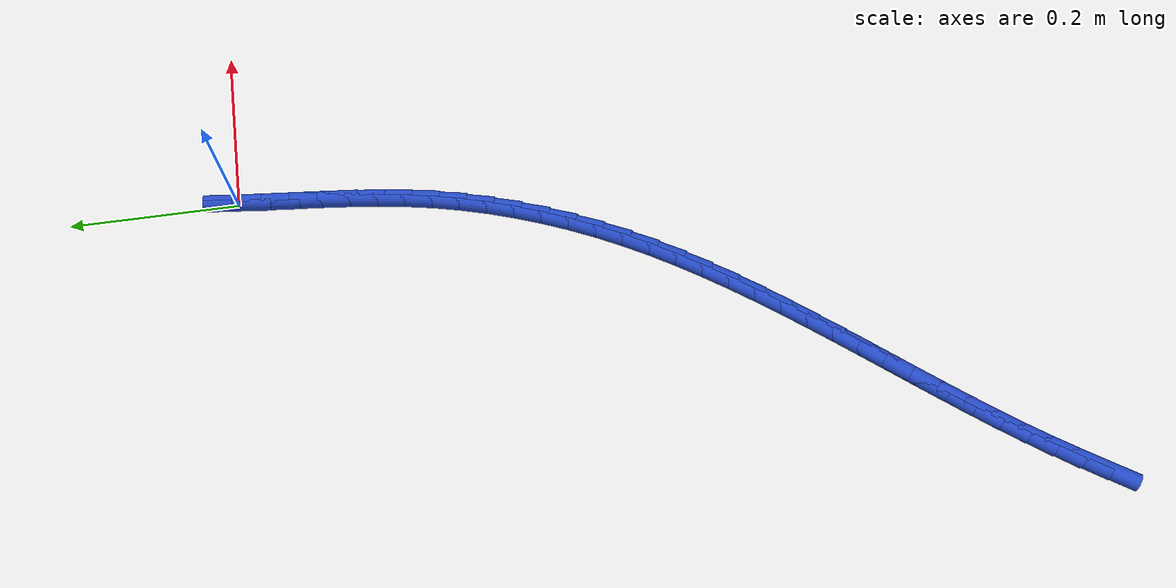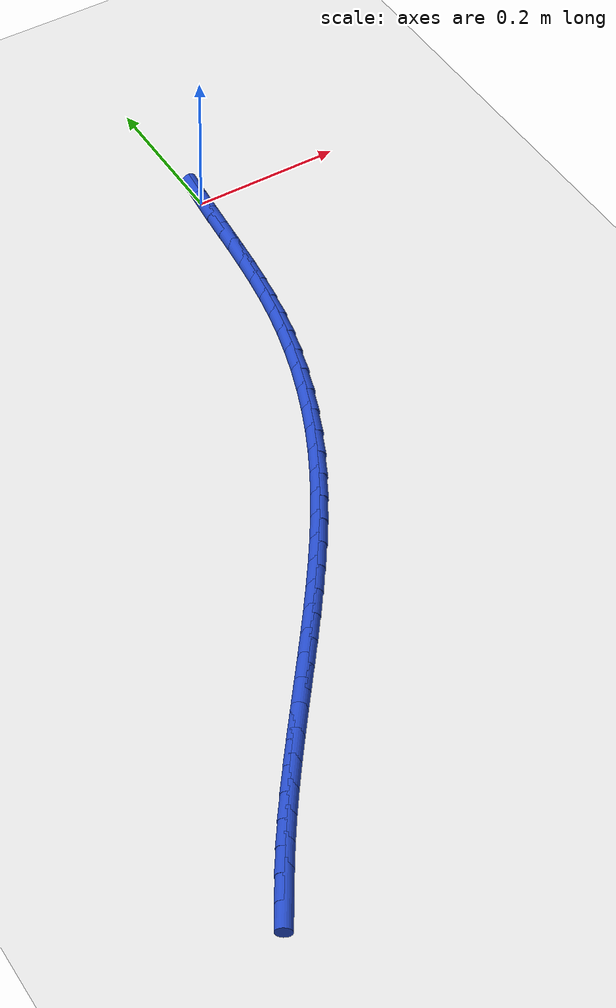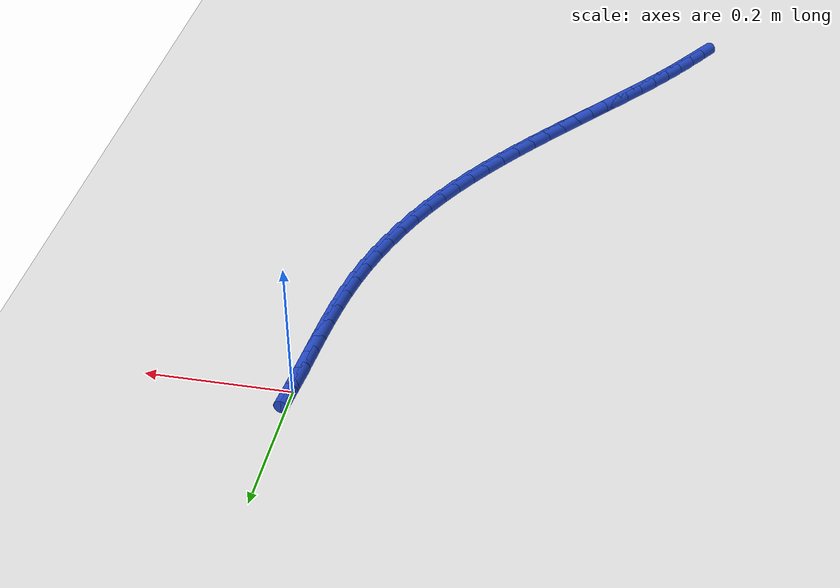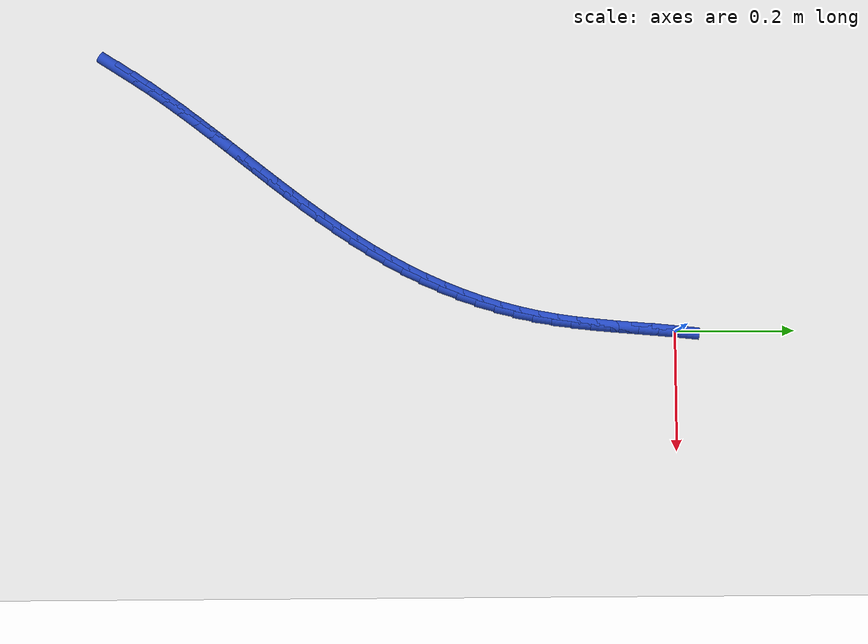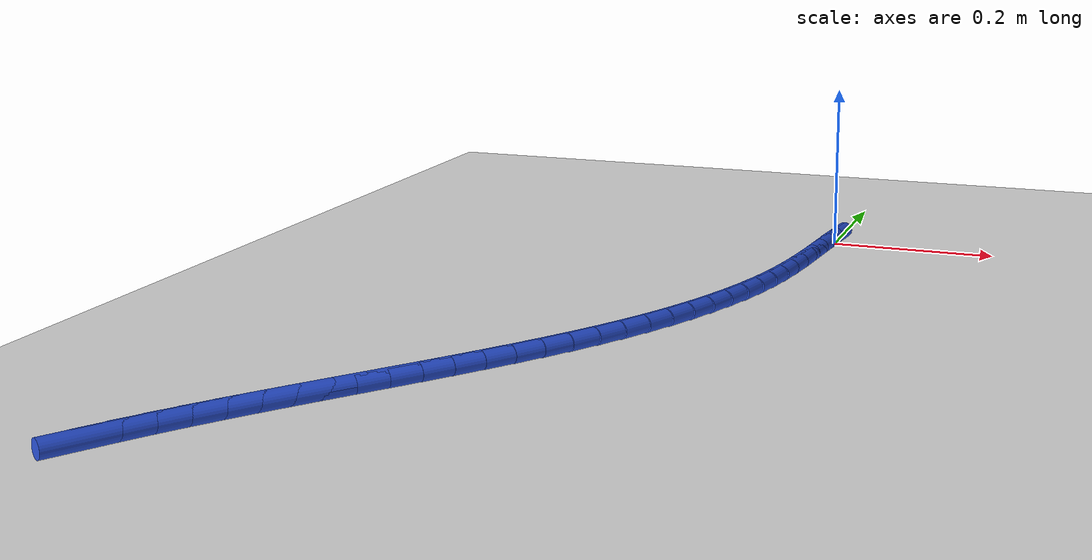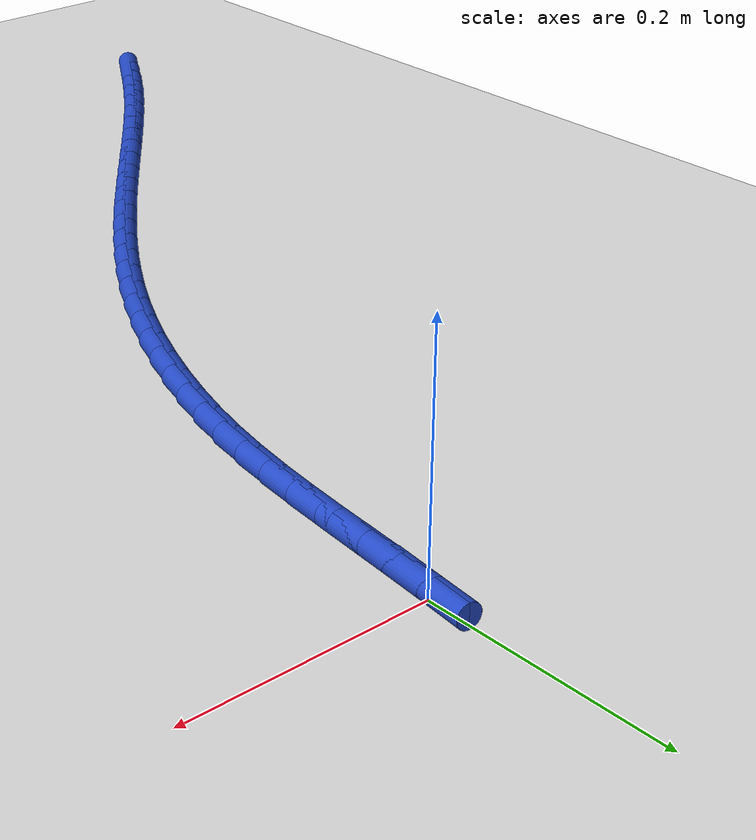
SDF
<sdf version="1.6">
 <world name="default">
  <model name="ground_plane">
   <static>1</static>
   <link name="link">
    <collision name="collision">
     <geometry><plane><normal>0 0 1</normal><size>100 100</size></plane></geometry>
     <surface><friction><ode><mu>100</mu><mu2>50</mu2></ode></friction></surface>
    </collision>
    <visual name="visual">
     <cast_shadows>0</cast_shadows>
     <geometry><plane><normal>0 0 1</normal><size>100 100</size></plane></geometry>
     <material>
      <script><uri>file://media/materials/scripts/gazebo.material</uri><name>Gazebo/WhiteGlow</name></script>
     </material>
    </visual>
   </link>
  </model>
  <model name="line">
   <link name="link_0">
    <pose>-5.2909066017292616e-17 -6.938893903907228e-17 0.01 0 1.57 1.4719108549677495</pose>
    <collision name="collision">
     <geometry><cylinder><radius>0.01</radius><length>0.08</length></cylinder></geometry>
    </collision>
    <visual name="visual">
     <material>
      <script><name>Gazebo/Blue</name><uri>file://media/materials/scripts/gazebo.material</uri></script>
     </material>
     <geometry><cylinder><radius>0.01</radius><length>0.08</length></cylinder></geometry>
    </visual>
   </link>
   <link name="link_238">
    <pose>-0.4505732284447733 -0.9328432048440135 0.01 0 1.57 1.0001764402918916</pose>
    <collision name="collision">
     <geometry><cylinder><radius>0.01</radius><length>0.08</length></cylinder></geometry>
    </collision>
    <visual name="visual">
     <material>
      <script><name>Gazebo/Blue</name><uri>file://media/materials/scripts/gazebo.material</uri></script>
     </material>
     <geometry><cylinder><radius>0.01</radius><length>0.08</length></cylinder></geometry>
    </visual>
   </link>
   <link name="link_239">
    <pose>-0.433772497186452 -0.9066674590570161 0.01 0 1.57 0.9844523544876632</pose>
    <collision name="collision">
     <geometry><cylinder><radius>0.01</radius><length>0.08</length></cylinder></geometry>
    </collision>
    <visual name="visual">
     <material>
      <script><name>Gazebo/Blue</name><uri>file://media/materials/scripts/gazebo.material</uri></script>
     </material>
     <geometry><cylinder><radius>0.01</radius><length>0.08</length></cylinder></geometry>
    </visual>
   </link>
   <link name="link_240">
    <pose>-0.4164204903059226 -0.88054567846753 0.01 0 1.57 0.9599247755791104</pose>
    <collision name="collision">
     <geometry><cylinder><radius>0.01</radius><length>0.08</length></cylinder></geometry>
    </collision>
    <visual name="visual">
     <material>
      <script><name>Gazebo/Blue</name><uri>file://media/materials/scripts/gazebo.material</uri></script>
     </material>
     <geometry><cylinder><radius>0.01</radius><length>0.08</length></cylinder></geometry>
    </visual>
   </link>
   <link name="link_241">
    <pose>-0.3982071655433427 -0.8545347045057053 0.01 0 1.57 0.9399020429820946</pose>
    <collision name="collision">
     <geometry><cylinder><radius>0.01</radius><length>0.08</length></cylinder></geometry>
    </collision>
    <visual name="visual">
     <material>
      <script><name>Gazebo/Blue</name><uri>file://media/materials/scripts/gazebo.material</uri></script>
     </material>
     <geometry><cylinder><radius>0.01</radius><length>0.08</length></cylinder></geometry>
    </visual>
   </link>
   <link name="link_242">
    <pose>-0.3792562525700924 -0.8285917970112744 0.01 0 1.57 0.9241986897819827</pose>
    <collision name="collision">
     <geometry><cylinder><radius>0.01</radius><length>0.08</length></cylinder></geometry>
    </collision>
    <visual name="visual">
     <material>
      <script><name>Gazebo/Blue</name><uri>file://media/materials/scripts/gazebo.material</uri></script>
     </material>
     <geometry><cylinder><radius>0.01</radius><length>0.08</length></cylinder></geometry>
    </visual>
   </link>
   <link name="link_243">
    <pose>-0.35969224440429765 -0.8026740405814599 0.01 0 1.57 0.9126295195875007</pose>
    <collision name="collision">
     <geometry><cylinder><radius>0.01</radius><length>0.08</length></cylinder></geometry>
    </collision>
    <visual name="visual">
     <material>
      <script><name>Gazebo/Blue</name><uri>file://media/materials/scripts/gazebo.material</uri></script>
     </material>
     <geometry><cylinder><radius>0.01</radius><length>0.08</length></cylinder></geometry>
    </visual>
   </link>
   <link name="link_244">
    <pose>-0.3396396340640826 -0.7767385198134816 0.01 0 1.57 0.9050380089830851</pose>
    <collision name="collision">
     <geometry><cylinder><radius>0.01</radius><length>0.08</length></cylinder></geometry>
    </collision>
    <visual name="visual">
     <material>
      <script><name>Gazebo/Blue</name><uri>file://media/materials/scripts/gazebo.material</uri></script>
     </material>
     <geometry><cylinder><radius>0.01</radius><length>0.08</length></cylinder></geometry>
    </visual>
   </link>
   <link name="link_245">
    <pose>-0.3192229145675734 -0.7507423193045627 0.01 0 1.57 0.9012987758074977</pose>
    <collision name="collision">
     <geometry><cylinder><radius>0.01</radius><length>0.08</length></cylinder></geometry>
    </collision>
    <visual name="visual">
     <material>
      <script><name>Gazebo/Blue</name><uri>file://media/materials/scripts/gazebo.material</uri></script>
     </material>
     <geometry><cylinder><radius>0.01</radius><length>0.08</length></cylinder></geometry>
    </visual>
   </link>
   <link name="link_246">
    <pose>-0.29856657893289434 -0.7246425236519233 0.01 0 1.57 0.9013182367154601</pose>
    <collision name="collision">
     <geometry><cylinder><radius>0.01</radius><length>0.08</length></cylinder></geometry>
    </collision>
    <visual name="visual">
     <material>
      <script><name>Gazebo/Blue</name><uri>file://media/materials/scripts/gazebo.material</uri></script>
     </material>
     <geometry><cylinder><radius>0.01</radius><length>0.08</length></cylinder></geometry>
    </visual>
   </link>
   <link name="link_247">
    <pose>-0.2777951201781699 -0.6983962174527837 0.01 0 1.57 0.9050339617759674</pose>
    <collision name="collision">
     <geometry><cylinder><radius>0.01</radius><length>0.08</length></cylinder></geometry>
    </collision>
    <visual name="visual">
     <material>
      <script><name>Gazebo/Blue</name><uri>file://media/materials/scripts/gazebo.material</uri></script>
     </material>
     <geometry><cylinder><radius>0.01</radius><length>0.08</length></cylinder></geometry>
    </visual>
   </link>
   <link name="link_248">
    <pose>-0.25703303132152644 -0.6719604853043677 0.01 0 1.57 0.9124130210629497</pose>
    <collision name="collision">
     <geometry><cylinder><radius>0.01</radius><length>0.08</length></cylinder></geometry>
    </collision>
    <visual name="visual">
     <material>
      <script><name>Gazebo/Blue</name><uri>file://media/materials/scripts/gazebo.material</uri></script>
     </material>
     <geometry><cylinder><radius>0.01</radius><length>0.08</length></cylinder></geometry>
    </visual>
   </link>
   <link name="link_249">
    <pose>-0.23640480538108766 -0.6452924118038946 0.01 0 1.57 0.923449441210996</pose>
    <collision name="collision">
     <geometry><cylinder><radius>0.01</radius><length>0.08</length></cylinder></geometry>
    </collision>
    <visual name="visual">
     <material>
      <script><name>Gazebo/Blue</name><uri>file://media/materials/scripts/gazebo.material</uri></script>
     </material>
     <geometry><cylinder><radius>0.01</radius><length>0.08</length></cylinder></geometry>
    </visual>
   </link>
   <link name="link_250">
    <pose>-0.21603493537497992 -0.618349081548587 0.01 0 1.57 0.9381607440643199</pose>
    <collision name="collision">
     <geometry><cylinder><radius>0.01</radius><length>0.08</length></cylinder></geometry>
    </collision>
    <visual name="visual">
     <material>
      <script><name>Gazebo/Blue</name><uri>file://media/materials/scripts/gazebo.material</uri></script>
     </material>
     <geometry><cylinder><radius>0.01</radius><length>0.08</length></cylinder></geometry>
    </visual>
   </link>
   <link name="link_251">
    <pose>-0.196047914321327 -0.5910875791356652 0.01 0 1.57 0.9565834206056822</pose>
    <collision name="collision">
     <geometry><cylinder><radius>0.01</radius><length>0.08</length></cylinder></geometry>
    </collision>
    <visual name="visual">
     <material>
      <script><name>Gazebo/Blue</name><uri>file://media/materials/scripts/gazebo.material</uri></script>
     </material>
     <geometry><cylinder><radius>0.01</radius><length>0.08</length></cylinder></geometry>
    </visual>
   </link>
   <link name="link_252">
    <pose>-0.17656823523825513 -0.563464989162352 0.01 0 1.57 0.9787671013660283</pose>
    <collision name="collision">
     <geometry><cylinder><radius>0.01</radius><length>0.08</length></cylinder></geometry>
    </collision>
    <visual name="visual">
     <material>
      <script><name>Gazebo/Blue</name><uri>file://media/materials/scripts/gazebo.material</uri></script>
     </material>
     <geometry><cylinder><radius>0.01</radius><length>0.08</length></cylinder></geometry>
    </visual>
   </link>
   <link name="link_253">
    <pose>-0.15772039114388825 -0.535438396225867 0.01 0 1.57 1.0047671266364127</pose>
    <collision name="collision">
     <geometry><cylinder><radius>0.01</radius><length>0.08</length></cylinder></geometry>
    </collision>
    <visual name="visual">
     <material>
      <script><name>Gazebo/Blue</name><uri>file://media/materials/scripts/gazebo.material</uri></script>
     </material>
     <geometry><cylinder><radius>0.01</radius><length>0.08</length></cylinder></geometry>
    </visual>
   </link>
   <link name="link_254">
    <pose>-0.13962887505635244 -0.5069648849234332 0.01 0 1.57 1.034635212419244</pose>
    <collision name="collision">
     <geometry><cylinder><radius>0.01</radius><length>0.08</length></cylinder></geometry>
    </collision>
    <visual name="visual">
     <material>
      <script><name>Gazebo/Blue</name><uri>file://media/materials/scripts/gazebo.material</uri></script>
     </material>
     <geometry><cylinder><radius>0.01</radius><length>0.08</length></cylinder></geometry>
    </visual>
   </link>
   <link name="link_255">
    <pose>-0.12241817999377165 -0.47800153985227023 0.01 0 1.57 1.0684079771030641</pose>
    <collision name="collision">
     <geometry><cylinder><radius>0.01</radius><length>0.08</length></cylinder></geometry>
    </collision>
    <visual name="visual">
     <material>
      <script><name>Gazebo/Blue</name><uri>file://media/materials/scripts/gazebo.material</uri></script>
     </material>
     <geometry><cylinder><radius>0.01</radius><length>0.08</length></cylinder></geometry>
    </visual>
   </link>
   <link name="link_256">
    <pose>-0.10621279896184267 -0.44850544562896866 0.01 0 1.57 1.1054620068189691</pose>
    <collision name="collision">
     <geometry><cylinder><radius>0.01</radius><length>0.08</length></cylinder></geometry>
    </collision>
    <visual name="visual">
     <material>
      <script><name>Gazebo/Blue</name><uri>file://media/materials/scripts/gazebo.material</uri></script>
     </material>
     <geometry><cylinder><radius>0.01</radius><length>0.08</length></cylinder></geometry>
    </visual>
   </link>
   <link name="link_257">
    <pose>-0.09112389339244022 -0.4184544598879878 0.01 0 1.57 1.1434126743536488</pose>
    <collision name="collision">
     <geometry><cylinder><radius>0.01</radius><length>0.08</length></cylinder></geometry>
    </collision>
    <visual name="visual">
     <material>
      <script><name>Gazebo/Blue</name><uri>file://media/materials/scripts/gazebo.material</uri></script>
     </material>
     <geometry><cylinder><radius>0.01</radius><length>0.08</length></cylinder></geometry>
    </visual>
   </link>
   <link name="link_258">
    <pose>-0.07721085338559341 -0.3879071094192975 0.01 0 1.57 1.1818525462947118</pose>
    <collision name="collision">
     <geometry><cylinder><radius>0.01</radius><length>0.08</length></cylinder></geometry>
    </collision>
    <visual name="visual">
     <material>
      <script><name>Gazebo/Blue</name><uri>file://media/materials/scripts/gazebo.material</uri></script>
     </material>
     <geometry><cylinder><radius>0.01</radius><length>0.08</length></cylinder></geometry>
    </visual>
   </link>
   <link name="link_259">
    <pose>-0.06452050367864613 -0.35694150013437254 0.01 0 1.57 1.2209840826684342</pose>
    <collision name="collision">
     <geometry><cylinder><radius>0.01</radius><length>0.08</length></cylinder></geometry>
    </collision>
    <visual name="visual">
     <material>
      <script><name>Gazebo/Blue</name><uri>file://media/materials/scripts/gazebo.material</uri></script>
     </material>
     <geometry><cylinder><radius>0.01</radius><length>0.08</length></cylinder></geometry>
    </visual>
   </link>
   <link name="link_260">
    <pose>-0.05309966900894065 -0.3256357379446845 0.01 0 1.57 1.261013041553228</pose>
    <collision name="collision">
     <geometry><cylinder><radius>0.01</radius><length>0.08</length></cylinder></geometry>
    </collision>
    <visual name="visual">
     <material>
      <script><name>Gazebo/Blue</name><uri>file://media/materials/scripts/gazebo.material</uri></script>
     </material>
     <geometry><cylinder><radius>0.01</radius><length>0.08</length></cylinder></geometry>
    </visual>
   </link>
   <link name="link_261">
    <pose>-0.042995174113820714 -0.29406792876170845 0.01 0 1.57 1.3021490768912583</pose>
    <collision name="collision">
     <geometry><cylinder><radius>0.01</radius><length>0.08</length></cylinder></geometry>
    </collision>
    <visual name="visual">
     <material>
      <script><name>Gazebo/Blue</name><uri>file://media/materials/scripts/gazebo.material</uri></script>
     </material>
     <geometry><cylinder><radius>0.01</radius><length>0.08</length></cylinder></geometry>
    </visual>
   </link>
   <link name="link_262">
    <pose>-0.03425384373062873 -0.2623161784969159 0.01 0 1.57 1.3446058151800606</pose>
    <collision name="collision">
     <geometry><cylinder><radius>0.01</radius><length>0.08</length></cylinder></geometry>
    </collision>
    <visual name="visual">
     <material>
      <script><name>Gazebo/Blue</name><uri>file://media/materials/scripts/gazebo.material</uri></script>
     </material>
     <geometry><cylinder><radius>0.01</radius><length>0.08</length></cylinder></geometry>
    </visual>
   </link>
   <link name="link_263">
    <pose>-0.026922502590068176 -0.2304585930579225 0.01 0 1.57 1.3870815043847637</pose>
    <collision name="collision">
     <geometry><cylinder><radius>0.01</radius><length>0.08</length></cylinder></geometry>
    </collision>
    <visual name="visual">
     <material>
      <script><name>Gazebo/Blue</name><uri>file://media/materials/scripts/gazebo.material</uri></script>
     </material>
     <geometry><cylinder><radius>0.01</radius><length>0.08</length></cylinder></geometry>
    </visual>
   </link>
   <link name="link_264">
    <pose>-0.0209918292523332 -0.19854064367541305 0.01 0 1.57 1.4233893959877661</pose>
    <collision name="collision">
     <geometry><cylinder><radius>0.01</radius><length>0.08</length></cylinder></geometry>
    </collision>
    <visual name="visual">
     <material>
      <script><name>Gazebo/Blue</name><uri>file://media/materials/scripts/gazebo.material</uri></script>
     </material>
     <geometry><cylinder><radius>0.01</radius><length>0.08</length></cylinder></geometry>
    </visual>
   </link>
   <link name="link_265">
    <pose>-0.016231216486174423 -0.16647918033579712 0.01 0 1.57 1.4514500304086817</pose>
    <collision name="collision">
     <geometry><cylinder><radius>0.01</radius><length>0.08</length></cylinder></geometry>
    </collision>
    <visual name="visual">
     <material>
      <script><name>Gazebo/Blue</name><uri>file://media/materials/scripts/gazebo.material</uri></script>
     </material>
     <geometry><cylinder><radius>0.01</radius><length>0.08</length></cylinder></geometry>
    </visual>
   </link>
   <link name="link_266">
    <pose>-0.012355548256476667 -0.13415937005961254 0.01 0 1.57 1.470929594494098</pose>
    <collision name="collision">
     <geometry><cylinder><radius>0.01</radius><length>0.08</length></cylinder></geometry>
    </collision>
    <visual name="visual">
     <material>
      <script><name>Gazebo/Blue</name><uri>file://media/materials/scripts/gazebo.material</uri></script>
     </material>
     <geometry><cylinder><radius>0.01</radius><length>0.08</length></cylinder></geometry>
    </visual>
   </link>
   <link name="link_267">
    <pose>-0.009079708528125303 -0.10146637986740134 0.01 0 1.57 1.4817904661592998</pose>
    <collision name="collision">
     <geometry><cylinder><radius>0.01</radius><length>0.08</length></cylinder></geometry>
    </collision>
    <visual name="visual">
     <material>
      <script><name>Gazebo/Blue</name><uri>file://media/materials/scripts/gazebo.material</uri></script>
     </material>
     <geometry><cylinder><radius>0.01</radius><length>0.08</length></cylinder></geometry>
    </visual>
   </link>
   <link name="link_268">
    <pose>-0.006118581266005334 -0.06828537677970242 0.01 0 1.57 1.484239991365416</pose>
    <collision name="collision">
     <geometry><cylinder><radius>0.01</radius><length>0.08</length></cylinder></geometry>
    </collision>
    <visual name="visual">
     <material>
      <script><name>Gazebo/Blue</name><uri>file://media/materials/scripts/gazebo.material</uri></script>
     </material>
     <geometry><cylinder><radius>0.01</radius><length>0.08</length></cylinder></geometry>
    </visual>
   </link>
   <link name="link_269">
    <pose>-0.003187050435001814 -0.034501527817054664 0.01 0 1.57 1.4786835496705295</pose>
    <collision name="collision">
     <geometry><cylinder><radius>0.01</radius><length>0.08</length></cylinder></geometry>
    </collision>
    <visual name="visual">
     <material>
      <script><name>Gazebo/Blue</name><uri>file://media/materials/scripts/gazebo.material</uri></script>
     </material>
     <geometry><cylinder><radius>0.01</radius><length>0.08</length></cylinder></geometry>
    </visual>
   </link>
   <link name="link_270">
    <pose>-4.9439619065339e-17 -5.551115123125783e-17 0.01 0 1.57 1.4656866897604726</pose>
    <collision name="collision">
     <geometry><cylinder><radius>0.01</radius><length>0.08</length></cylinder></geometry>
    </collision>
    <visual name="visual">
     <material>
      <script><name>Gazebo/Blue</name><uri>file://media/materials/scripts/gazebo.material</uri></script>
     </material>
     <geometry><cylinder><radius>0.01</radius><length>0.08</length></cylinder></geometry>
    </visual>
   </link>
  </model>
 </world>
</sdf>
